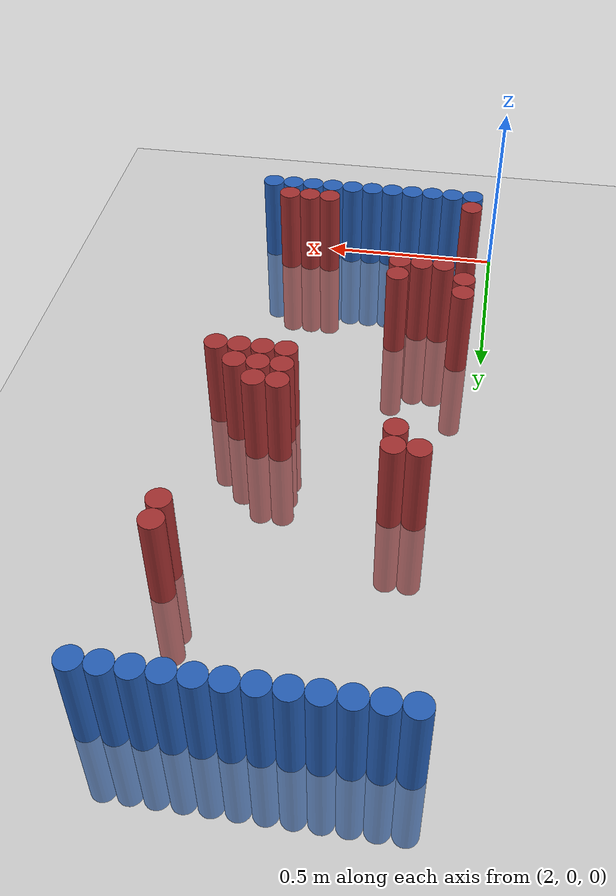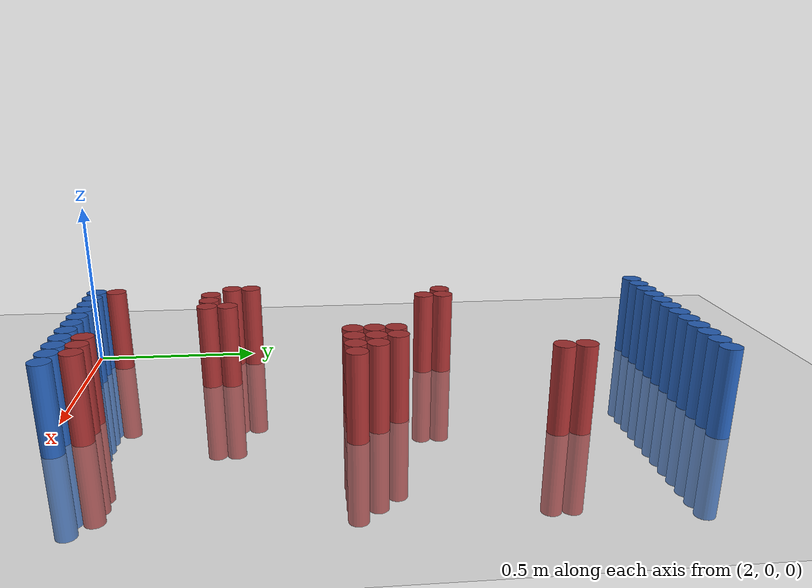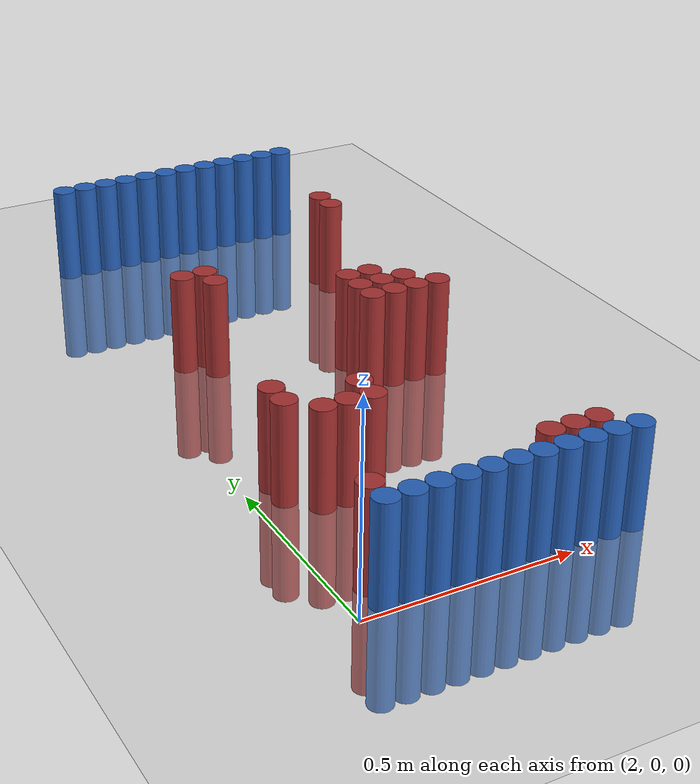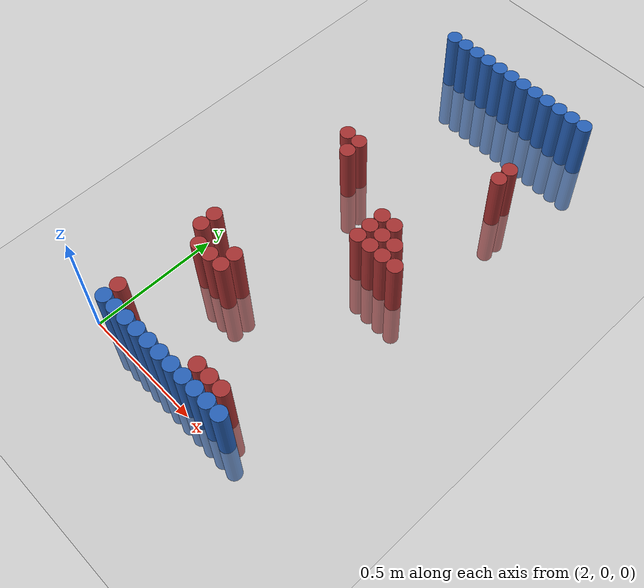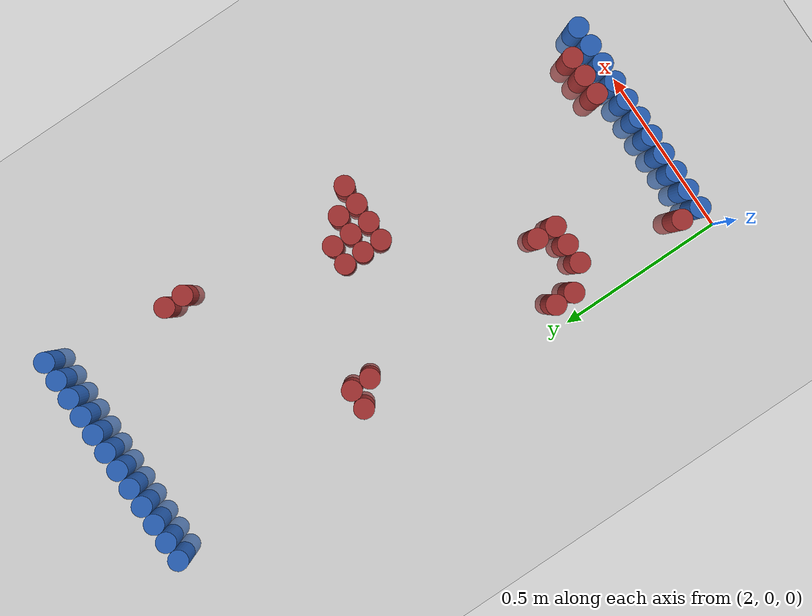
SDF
<sdf version="1.6">
 <world name="default">
  <model name="ground_plane">
   <static>1</static>
   <link name="link">
    <collision name="collision">
     <geometry><plane><normal>0 0 1</normal><size>100 100</size></plane></geometry>
     <surface><friction><ode><mu>100</mu><mu2>50</mu2></ode></friction></surface>
    </collision>
    <visual name="visual">
     <cast_shadows>0</cast_shadows>
     <geometry><plane><normal>0 0 1</normal><size>100 100</size></plane></geometry>
     <material>
      <script><uri>file://media/materials/scripts/gazebo.material</uri><name>Gazebo/Grey</name></script>
     </material>
    </visual>
   </link>
  </model>
  <model name="unit_cylinder_95">
   <static>1</static>
   <pose>2.070000 1.770000 0.000000 0.000000 0.000000 0.000000</pose>
   <link name="link">
    <inertial>
     <mass>1</mass>
     <inertia><ixx>0.145833</ixx><ixy>0</ixy><ixz>0</ixz><iyy>0.145833</iyy><iyz>0</iyz><izz>0.125</izz></inertia>
    </inertial>
    <collision name="collision">
     <geometry><cylinder><radius>0.030000</radius><length>0.5</length></cylinder></geometry>
    </collision>
    <visual name="visual">
     <geometry><cylinder><radius>0.030000</radius><length>0.5</length></cylinder></geometry>
     <material>
      <ambient>0.152000 0.379000 0.720000 1</ambient>
      <diffuse>0.152000 0.379000 0.720000 1</diffuse>
     </material>
     <material>
      <script><name>Gazebo/Grey</name><uri>file://media/materials/scripts/gazebo.material</uri></script>
     </material>
    </visual>
   </link>
  </model>
  <model name="unit_cylinder_96">
   <static>1</static>
   <pose>2.130000 1.770000 0.000000 0.000000 0.000000 0.000000</pose>
   <link name="link">
    <inertial>
     <mass>1</mass>
     <inertia><ixx>0.145833</ixx><ixy>0</ixy><ixz>0</ixz><iyy>0.145833</iyy><iyz>0</iyz><izz>0.125</izz></inertia>
    </inertial>
    <collision name="collision">
     <geometry><cylinder><radius>0.030000</radius><length>0.5</length></cylinder></geometry>
    </collision>
    <visual name="visual">
     <geometry><cylinder><radius>0.030000</radius><length>0.5</length></cylinder></geometry>
     <material>
      <ambient>0.152000 0.379000 0.720000 1</ambient>
      <diffuse>0.152000 0.379000 0.720000 1</diffuse>
     </material>
     <material>
      <script><name>Gazebo/Grey</name><uri>file://media/materials/scripts/gazebo.material</uri></script>
     </material>
    </visual>
   </link>
  </model>
  <model name="unit_cylinder_97">
   <static>1</static>
   <pose>2.190000 1.770000 0.000000 0.000000 0.000000 0.000000</pose>
   <link name="link">
    <inertial>
     <mass>1</mass>
     <inertia><ixx>0.145833</ixx><ixy>0</ixy><ixz>0</ixz><iyy>0.145833</iyy><iyz>0</iyz><izz>0.125</izz></inertia>
    </inertial>
    <collision name="collision">
     <geometry><cylinder><radius>0.030000</radius><length>0.5</length></cylinder></geometry>
    </collision>
    <visual name="visual">
     <geometry><cylinder><radius>0.030000</radius><length>0.5</length></cylinder></geometry>
     <material>
      <ambient>0.152000 0.379000 0.720000 1</ambient>
      <diffuse>0.152000 0.379000 0.720000 1</diffuse>
     </material>
     <material>
      <script><name>Gazebo/Grey</name><uri>file://media/materials/scripts/gazebo.material</uri></script>
     </material>
    </visual>
   </link>
  </model>
  <model name="unit_cylinder_98">
   <static>1</static>
   <pose>2.250000 1.770000 0.000000 0.000000 0.000000 0.000000</pose>
   <link name="link">
    <inertial>
     <mass>1</mass>
     <inertia><ixx>0.145833</ixx><ixy>0</ixy><ixz>0</ixz><iyy>0.145833</iyy><iyz>0</iyz><izz>0.125</izz></inertia>
    </inertial>
    <collision name="collision">
     <geometry><cylinder><radius>0.030000</radius><length>0.5</length></cylinder></geometry>
    </collision>
    <visual name="visual">
     <geometry><cylinder><radius>0.030000</radius><length>0.5</length></cylinder></geometry>
     <material>
      <ambient>0.152000 0.379000 0.720000 1</ambient>
      <diffuse>0.152000 0.379000 0.720000 1</diffuse>
     </material>
     <material>
      <script><name>Gazebo/Grey</name><uri>file://media/materials/scripts/gazebo.material</uri></script>
     </material>
    </visual>
   </link>
  </model>
  <model name="unit_cylinder_99">
   <static>1</static>
   <pose>2.310000 1.770000 0.000000 0.000000 0.000000 0.000000</pose>
   <link name="link">
    <inertial>
     <mass>1</mass>
     <inertia><ixx>0.145833</ixx><ixy>0</ixy><ixz>0</ixz><iyy>0.145833</iyy><iyz>0</iyz><izz>0.125</izz></inertia>
    </inertial>
    <collision name="collision">
     <geometry><cylinder><radius>0.030000</radius><length>0.5</length></cylinder></geometry>
    </collision>
    <visual name="visual">
     <geometry><cylinder><radius>0.030000</radius><length>0.5</length></cylinder></geometry>
     <material>
      <ambient>0.152000 0.379000 0.720000 1</ambient>
      <diffuse>0.152000 0.379000 0.720000 1</diffuse>
     </material>
     <material>
      <script><name>Gazebo/Grey</name><uri>file://media/materials/scripts/gazebo.material</uri></script>
     </material>
    </visual>
   </link>
  </model>
  <model name="unit_cylinder_100">
   <static>1</static>
   <pose>2.370000 1.770000 0.000000 0.000000 0.000000 0.000000</pose>
   <link name="link">
    <inertial>
     <mass>1</mass>
     <inertia><ixx>0.145833</ixx><ixy>0</ixy><ixz>0</ixz><iyy>0.145833</iyy><iyz>0</iyz><izz>0.125</izz></inertia>
    </inertial>
    <collision name="collision">
     <geometry><cylinder><radius>0.030000</radius><length>0.5</length></cylinder></geometry>
    </collision>
    <visual name="visual">
     <geometry><cylinder><radius>0.030000</radius><length>0.5</length></cylinder></geometry>
     <material>
      <ambient>0.152000 0.379000 0.720000 1</ambient>
      <diffuse>0.152000 0.379000 0.720000 1</diffuse>
     </material>
     <material>
      <script><name>Gazebo/Grey</name><uri>file://media/materials/scripts/gazebo.material</uri></script>
     </material>
    </visual>
   </link>
  </model>
  <model name="unit_cylinder_101">
   <static>1</static>
   <pose>2.430000 1.770000 0.000000 0.000000 0.000000 0.000000</pose>
   <link name="link">
    <inertial>
     <mass>1</mass>
     <inertia><ixx>0.145833</ixx><ixy>0</ixy><ixz>0</ixz><iyy>0.145833</iyy><iyz>0</iyz><izz>0.125</izz></inertia>
    </inertial>
    <collision name="collision">
     <geometry><cylinder><radius>0.030000</radius><length>0.5</length></cylinder></geometry>
    </collision>
    <visual name="visual">
     <geometry><cylinder><radius>0.030000</radius><length>0.5</length></cylinder></geometry>
     <material>
      <ambient>0.152000 0.379000 0.720000 1</ambient>
      <diffuse>0.152000 0.379000 0.720000 1</diffuse>
     </material>
     <material>
      <script><name>Gazebo/Grey</name><uri>file://media/materials/scripts/gazebo.material</uri></script>
     </material>
    </visual>
   </link>
  </model>
  <model name="unit_cylinder_102">
   <static>1</static>
   <pose>2.490000 1.770000 0.000000 0.000000 0.000000 0.000000</pose>
   <link name="link">
    <inertial>
     <mass>1</mass>
     <inertia><ixx>0.145833</ixx><ixy>0</ixy><ixz>0</ixz><iyy>0.145833</iyy><iyz>0</iyz><izz>0.125</izz></inertia>
    </inertial>
    <collision name="collision">
     <geometry><cylinder><radius>0.030000</radius><length>0.5</length></cylinder></geometry>
    </collision>
    <visual name="visual">
     <geometry><cylinder><radius>0.030000</radius><length>0.5</length></cylinder></geometry>
     <material>
      <ambient>0.152000 0.379000 0.720000 1</ambient>
      <diffuse>0.152000 0.379000 0.720000 1</diffuse>
     </material>
     <material>
      <script><name>Gazebo/Grey</name><uri>file://media/materials/scripts/gazebo.material</uri></script>
     </material>
    </visual>
   </link>
  </model>
  <model name="unit_cylinder_103">
   <static>1</static>
   <pose>2.550000 1.770000 0.000000 0.000000 0.000000 0.000000</pose>
   <link name="link">
    <inertial>
     <mass>1</mass>
     <inertia><ixx>0.145833</ixx><ixy>0</ixy><ixz>0</ixz><iyy>0.145833</iyy><iyz>0</iyz><izz>0.125</izz></inertia>
    </inertial>
    <collision name="collision">
     <geometry><cylinder><radius>0.030000</radius><length>0.5</length></cylinder></geometry>
    </collision>
    <visual name="visual">
     <geometry><cylinder><radius>0.030000</radius><length>0.5</length></cylinder></geometry>
     <material>
      <ambient>0.152000 0.379000 0.720000 1</ambient>
      <diffuse>0.152000 0.379000 0.720000 1</diffuse>
     </material>
     <material>
      <script><name>Gazebo/Grey</name><uri>file://media/materials/scripts/gazebo.material</uri></script>
     </material>
    </visual>
   </link>
  </model>
  <model name="unit_cylinder_104">
   <static>1</static>
   <pose>2.610000 1.770000 0.000000 0.000000 0.000000 0.000000</pose>
   <link name="link">
    <inertial>
     <mass>1</mass>
     <inertia><ixx>0.145833</ixx><ixy>0</ixy><ixz>0</ixz><iyy>0.145833</iyy><iyz>0</iyz><izz>0.125</izz></inertia>
    </inertial>
    <collision name="collision">
     <geometry><cylinder><radius>0.030000</radius><length>0.5</length></cylinder></geometry>
    </collision>
    <visual name="visual">
     <geometry><cylinder><radius>0.030000</radius><length>0.5</length></cylinder></geometry>
     <material>
      <ambient>0.152000 0.379000 0.720000 1</ambient>
      <diffuse>0.152000 0.379000 0.720000 1</diffuse>
     </material>
     <material>
      <script><name>Gazebo/Grey</name><uri>file://media/materials/scripts/gazebo.material</uri></script>
     </material>
    </visual>
   </link>
  </model>
  <model name="unit_cylinder_105">
   <static>1</static>
   <pose>2.670000 1.770000 0.000000 0.000000 0.000000 0.000000</pose>
   <link name="link">
    <inertial>
     <mass>1</mass>
     <inertia><ixx>0.145833</ixx><ixy>0</ixy><ixz>0</ixz><iyy>0.145833</iyy><iyz>0</iyz><izz>0.125</izz></inertia>
    </inertial>
    <collision name="collision">
     <geometry><cylinder><radius>0.030000</radius><length>0.5</length></cylinder></geometry>
    </collision>
    <visual name="visual">
     <geometry><cylinder><radius>0.030000</radius><length>0.5</length></cylinder></geometry>
     <material>
      <ambient>0.152000 0.379000 0.720000 1</ambient>
      <diffuse>0.152000 0.379000 0.720000 1</diffuse>
     </material>
     <material>
      <script><name>Gazebo/Grey</name><uri>file://media/materials/scripts/gazebo.material</uri></script>
     </material>
    </visual>
   </link>
  </model>
  <model name="unit_cylinder_106">
   <static>1</static>
   <pose>2.730000 1.770000 0.000000 0.000000 0.000000 0.000000</pose>
   <link name="link">
    <inertial>
     <mass>1</mass>
     <inertia><ixx>0.145833</ixx><ixy>0</ixy><ixz>0</ixz><iyy>0.145833</iyy><iyz>0</iyz><izz>0.125</izz></inertia>
    </inertial>
    <collision name="collision">
     <geometry><cylinder><radius>0.030000</radius><length>0.5</length></cylinder></geometry>
    </collision>
    <visual name="visual">
     <geometry><cylinder><radius>0.030000</radius><length>0.5</length></cylinder></geometry>
     <material>
      <ambient>0.152000 0.379000 0.720000 1</ambient>
      <diffuse>0.152000 0.379000 0.720000 1</diffuse>
     </material>
     <material>
      <script><name>Gazebo/Grey</name><uri>file://media/materials/scripts/gazebo.material</uri></script>
     </material>
    </visual>
   </link>
  </model>
  <model name="unit_cylinder_145">
   <static>1</static>
   <pose>2.670000 1.410000 0.000000 0.000000 0.000000 0.000000</pose>
   <link name="link">
    <inertial>
     <mass>1</mass>
     <inertia><ixx>0.145833</ixx><ixy>0</ixy><ixz>0</ixz><iyy>0.145833</iyy><iyz>0</iyz><izz>0.125</izz></inertia>
    </inertial>
    <collision name="collision">
     <geometry><cylinder><radius>0.030000</radius><length>0.5</length></cylinder></geometry>
    </collision>
    <visual name="visual">
     <geometry><cylinder><radius>0.030000</radius><length>0.5</length></cylinder></geometry>
     <material>
      <ambient>0.648000 0.192000 0.192000 1</ambient>
      <diffuse>0.648000 0.192000 0.192000 1</diffuse>
     </material>
     <material>
      <script><name>Gazebo/Grey</name><uri>file://media/materials/scripts/gazebo.material</uri></script>
     </material>
    </visual>
   </link>
  </model>
  <model name="unit_cylinder_149">
   <static>1</static>
   <pose>2.670000 1.350000 0.000000 0.000000 0.000000 0.000000</pose>
   <link name="link">
    <inertial>
     <mass>1</mass>
     <inertia><ixx>0.145833</ixx><ixy>0</ixy><ixz>0</ixz><iyy>0.145833</iyy><iyz>0</iyz><izz>0.125</izz></inertia>
    </inertial>
    <collision name="collision">
     <geometry><cylinder><radius>0.030000</radius><length>0.5</length></cylinder></geometry>
    </collision>
    <visual name="visual">
     <geometry><cylinder><radius>0.030000</radius><length>0.5</length></cylinder></geometry>
     <material>
      <ambient>0.648000 0.192000 0.192000 1</ambient>
      <diffuse>0.648000 0.192000 0.192000 1</diffuse>
     </material>
     <material>
      <script><name>Gazebo/Grey</name><uri>file://media/materials/scripts/gazebo.material</uri></script>
     </material>
    </visual>
   </link>
  </model>
  <model name="unit_cylinder_154">
   <static>1</static>
   <pose>2.130000 1.110000 0.000000 0.000000 0.000000 0.000000</pose>
   <link name="link">
    <inertial>
     <mass>1</mass>
     <inertia><ixx>0.145833</ixx><ixy>0</ixy><ixz>0</ixz><iyy>0.145833</iyy><iyz>0</iyz><izz>0.125</izz></inertia>
    </inertial>
    <collision name="collision">
     <geometry><cylinder><radius>0.030000</radius><length>0.5</length></cylinder></geometry>
    </collision>
    <visual name="visual">
     <geometry><cylinder><radius>0.030000</radius><length>0.5</length></cylinder></geometry>
     <material>
      <ambient>0.648000 0.192000 0.192000 1</ambient>
      <diffuse>0.648000 0.192000 0.192000 1</diffuse>
     </material>
     <material>
      <script><name>Gazebo/Grey</name><uri>file://media/materials/scripts/gazebo.material</uri></script>
     </material>
    </visual>
   </link>
  </model>
  <model name="unit_cylinder_155">
   <static>1</static>
   <pose>2.190000 1.110000 0.000000 0.000000 0.000000 0.000000</pose>
   <link name="link">
    <inertial>
     <mass>1</mass>
     <inertia><ixx>0.145833</ixx><ixy>0</ixy><ixz>0</ixz><iyy>0.145833</iyy><iyz>0</iyz><izz>0.125</izz></inertia>
    </inertial>
    <collision name="collision">
     <geometry><cylinder><radius>0.030000</radius><length>0.5</length></cylinder></geometry>
    </collision>
    <visual name="visual">
     <geometry><cylinder><radius>0.030000</radius><length>0.5</length></cylinder></geometry>
     <material>
      <ambient>0.648000 0.192000 0.192000 1</ambient>
      <diffuse>0.648000 0.192000 0.192000 1</diffuse>
     </material>
     <material>
      <script><name>Gazebo/Grey</name><uri>file://media/materials/scripts/gazebo.material</uri></script>
     </material>
    </visual>
   </link>
  </model>
  <model name="unit_cylinder_157">
   <static>1</static>
   <pose>2.190000 1.050000 0.000000 0.000000 0.000000 0.000000</pose>
   <link name="link">
    <inertial>
     <mass>1</mass>
     <inertia><ixx>0.145833</ixx><ixy>0</ixy><ixz>0</ixz><iyy>0.145833</iyy><iyz>0</iyz><izz>0.125</izz></inertia>
    </inertial>
    <collision name="collision">
     <geometry><cylinder><radius>0.030000</radius><length>0.5</length></cylinder></geometry>
    </collision>
    <visual name="visual">
     <geometry><cylinder><radius>0.030000</radius><length>0.5</length></cylinder></geometry>
     <material>
      <ambient>0.648000 0.192000 0.192000 1</ambient>
      <diffuse>0.648000 0.192000 0.192000 1</diffuse>
     </material>
     <material>
      <script><name>Gazebo/Grey</name><uri>file://media/materials/scripts/gazebo.material</uri></script>
     </material>
    </visual>
   </link>
  </model>
  <model name="unit_cylinder_158">
   <static>1</static>
   <pose>2.490000 0.930000 0.000000 0.000000 0.000000 0.000000</pose>
   <link name="link">
    <inertial>
     <mass>1</mass>
     <inertia><ixx>0.145833</ixx><ixy>0</ixy><ixz>0</ixz><iyy>0.145833</iyy><iyz>0</iyz><izz>0.125</izz></inertia>
    </inertial>
    <collision name="collision">
     <geometry><cylinder><radius>0.030000</radius><length>0.5</length></cylinder></geometry>
    </collision>
    <visual name="visual">
     <geometry><cylinder><radius>0.030000</radius><length>0.5</length></cylinder></geometry>
     <material>
      <ambient>0.648000 0.192000 0.192000 1</ambient>
      <diffuse>0.648000 0.192000 0.192000 1</diffuse>
     </material>
     <material>
      <script><name>Gazebo/Grey</name><uri>file://media/materials/scripts/gazebo.material</uri></script>
     </material>
    </visual>
   </link>
  </model>
  <model name="unit_cylinder_159">
   <static>1</static>
   <pose>2.550000 0.930000 0.000000 0.000000 0.000000 0.000000</pose>
   <link name="link">
    <inertial>
     <mass>1</mass>
     <inertia><ixx>0.145833</ixx><ixy>0</ixy><ixz>0</ixz><iyy>0.145833</iyy><iyz>0</iyz><izz>0.125</izz></inertia>
    </inertial>
    <collision name="collision">
     <geometry><cylinder><radius>0.030000</radius><length>0.5</length></cylinder></geometry>
    </collision>
    <visual name="visual">
     <geometry><cylinder><radius>0.030000</radius><length>0.5</length></cylinder></geometry>
     <material>
      <ambient>0.648000 0.192000 0.192000 1</ambient>
      <diffuse>0.648000 0.192000 0.192000 1</diffuse>
     </material>
     <material>
      <script><name>Gazebo/Grey</name><uri>file://media/materials/scripts/gazebo.material</uri></script>
     </material>
    </visual>
   </link>
  </model>
  <model name="unit_cylinder_160">
   <static>1</static>
   <pose>2.490000 0.870000 0.000000 0.000000 0.000000 0.000000</pose>
   <link name="link">
    <inertial>
     <mass>1</mass>
     <inertia><ixx>0.145833</ixx><ixy>0</ixy><ixz>0</ixz><iyy>0.145833</iyy><iyz>0</iyz><izz>0.125</izz></inertia>
    </inertial>
    <collision name="collision">
     <geometry><cylinder><radius>0.030000</radius><length>0.5</length></cylinder></geometry>
    </collision>
    <visual name="visual">
     <geometry><cylinder><radius>0.030000</radius><length>0.5</length></cylinder></geometry>
     <material>
      <ambient>0.648000 0.192000 0.192000 1</ambient>
      <diffuse>0.648000 0.192000 0.192000 1</diffuse>
     </material>
     <material>
      <script><name>Gazebo/Grey</name><uri>file://media/materials/scripts/gazebo.material</uri></script>
     </material>
    </visual>
   </link>
  </model>
  <model name="unit_cylinder_161">
   <static>1</static>
   <pose>2.550000 0.870000 0.000000 0.000000 0.000000 0.000000</pose>
   <link name="link">
    <inertial>
     <mass>1</mass>
     <inertia><ixx>0.145833</ixx><ixy>0</ixy><ixz>0</ixz><iyy>0.145833</iyy><iyz>0</iyz><izz>0.125</izz></inertia>
    </inertial>
    <collision name="collision">
     <geometry><cylinder><radius>0.030000</radius><length>0.5</length></cylinder></geometry>
    </collision>
    <visual name="visual">
     <geometry><cylinder><radius>0.030000</radius><length>0.5</length></cylinder></geometry>
     <material>
      <ambient>0.648000 0.192000 0.192000 1</ambient>
      <diffuse>0.648000 0.192000 0.192000 1</diffuse>
     </material>
     <material>
      <script><name>Gazebo/Grey</name><uri>file://media/materials/scripts/gazebo.material</uri></script>
     </material>
    </visual>
   </link>
  </model>
  <model name="unit_cylinder_162">
   <static>1</static>
   <pose>2.610000 0.870000 0.000000 0.000000 0.000000 0.000000</pose>
   <link name="link">
    <inertial>
     <mass>1</mass>
     <inertia><ixx>0.145833</ixx><ixy>0</ixy><ixz>0</ixz><iyy>0.145833</iyy><iyz>0</iyz><izz>0.125</izz></inertia>
    </inertial>
    <collision name="collision">
     <geometry><cylinder><radius>0.030000</radius><length>0.5</length></cylinder></geometry>
    </collision>
    <visual name="visual">
     <geometry><cylinder><radius>0.030000</radius><length>0.5</length></cylinder></geometry>
     <material>
      <ambient>0.648000 0.192000 0.192000 1</ambient>
      <diffuse>0.648000 0.192000 0.192000 1</diffuse>
     </material>
     <material>
      <script><name>Gazebo/Grey</name><uri>file://media/materials/scripts/gazebo.material</uri></script>
     </material>
    </visual>
   </link>
  </model>
  <model name="unit_cylinder_163">
   <static>1</static>
   <pose>2.490000 0.810000 0.000000 0.000000 0.000000 0.000000</pose>
   <link name="link">
    <inertial>
     <mass>1</mass>
     <inertia><ixx>0.145833</ixx><ixy>0</ixy><ixz>0</ixz><iyy>0.145833</iyy><iyz>0</iyz><izz>0.125</izz></inertia>
    </inertial>
    <collision name="collision">
     <geometry><cylinder><radius>0.030000</radius><length>0.5</length></cylinder></geometry>
    </collision>
    <visual name="visual">
     <geometry><cylinder><radius>0.030000</radius><length>0.5</length></cylinder></geometry>
     <material>
      <ambient>0.648000 0.192000 0.192000 1</ambient>
      <diffuse>0.648000 0.192000 0.192000 1</diffuse>
     </material>
     <material>
      <script><name>Gazebo/Grey</name><uri>file://media/materials/scripts/gazebo.material</uri></script>
     </material>
    </visual>
   </link>
  </model>
  <model name="unit_cylinder_164">
   <static>1</static>
   <pose>2.550000 0.810000 0.000000 0.000000 0.000000 0.000000</pose>
   <link name="link">
    <inertial>
     <mass>1</mass>
     <inertia><ixx>0.145833</ixx><ixy>0</ixy><ixz>0</ixz><iyy>0.145833</iyy><iyz>0</iyz><izz>0.125</izz></inertia>
    </inertial>
    <collision name="collision">
     <geometry><cylinder><radius>0.030000</radius><length>0.5</length></cylinder></geometry>
    </collision>
    <visual name="visual">
     <geometry><cylinder><radius>0.030000</radius><length>0.5</length></cylinder></geometry>
     <material>
      <ambient>0.648000 0.192000 0.192000 1</ambient>
      <diffuse>0.648000 0.192000 0.192000 1</diffuse>
     </material>
     <material>
      <script><name>Gazebo/Grey</name><uri>file://media/materials/scripts/gazebo.material</uri></script>
     </material>
    </visual>
   </link>
  </model>
  <model name="unit_cylinder_165">
   <static>1</static>
   <pose>2.610000 0.810000 0.000000 0.000000 0.000000 0.000000</pose>
   <link name="link">
    <inertial>
     <mass>1</mass>
     <inertia><ixx>0.145833</ixx><ixy>0</ixy><ixz>0</ixz><iyy>0.145833</iyy><iyz>0</iyz><izz>0.125</izz></inertia>
    </inertial>
    <collision name="collision">
     <geometry><cylinder><radius>0.030000</radius><length>0.5</length></cylinder></geometry>
    </collision>
    <visual name="visual">
     <geometry><cylinder><radius>0.030000</radius><length>0.5</length></cylinder></geometry>
     <material>
      <ambient>0.648000 0.192000 0.192000 1</ambient>
      <diffuse>0.648000 0.192000 0.192000 1</diffuse>
     </material>
     <material>
      <script><name>Gazebo/Grey</name><uri>file://media/materials/scripts/gazebo.material</uri></script>
     </material>
    </visual>
   </link>
  </model>
  <model name="unit_cylinder_166">
   <static>1</static>
   <pose>2.670000 0.810000 0.000000 0.000000 0.000000 0.000000</pose>
   <link name="link">
    <inertial>
     <mass>1</mass>
     <inertia><ixx>0.145833</ixx><ixy>0</ixy><ixz>0</ixz><iyy>0.145833</iyy><iyz>0</iyz><izz>0.125</izz></inertia>
    </inertial>
    <collision name="collision">
     <geometry><cylinder><radius>0.030000</radius><length>0.5</length></cylinder></geometry>
    </collision>
    <visual name="visual">
     <geometry><cylinder><radius>0.030000</radius><length>0.5</length></cylinder></geometry>
     <material>
      <ambient>0.648000 0.192000 0.192000 1</ambient>
      <diffuse>0.648000 0.192000 0.192000 1</diffuse>
     </material>
     <material>
      <script><name>Gazebo/Grey</name><uri>file://media/materials/scripts/gazebo.material</uri></script>
     </material>
    </visual>
   </link>
  </model>
  <model name="unit_cylinder_171">
   <static>1</static>
   <pose>2.070000 0.510000 0.000000 0.000000 0.000000 0.000000</pose>
   <link name="link">
    <inertial>
     <mass>1</mass>
     <inertia><ixx>0.145833</ixx><ixy>0</ixy><ixz>0</ixz><iyy>0.145833</iyy><iyz>0</iyz><izz>0.125</izz></inertia>
    </inertial>
    <collision name="collision">
     <geometry><cylinder><radius>0.030000</radius><length>0.5</length></cylinder></geometry>
    </collision>
    <visual name="visual">
     <geometry><cylinder><radius>0.030000</radius><length>0.5</length></cylinder></geometry>
     <material>
      <ambient>0.648000 0.192000 0.192000 1</ambient>
      <diffuse>0.648000 0.192000 0.192000 1</diffuse>
     </material>
     <material>
      <script><name>Gazebo/Grey</name><uri>file://media/materials/scripts/gazebo.material</uri></script>
     </material>
    </visual>
   </link>
  </model>
  <model name="unit_cylinder_177">
   <static>1</static>
   <pose>2.070000 0.450000 0.000000 0.000000 0.000000 0.000000</pose>
   <link name="link">
    <inertial>
     <mass>1</mass>
     <inertia><ixx>0.145833</ixx><ixy>0</ixy><ixz>0</ixz><iyy>0.145833</iyy><iyz>0</iyz><izz>0.125</izz></inertia>
    </inertial>
    <collision name="collision">
     <geometry><cylinder><radius>0.030000</radius><length>0.5</length></cylinder></geometry>
    </collision>
    <visual name="visual">
     <geometry><cylinder><radius>0.030000</radius><length>0.5</length></cylinder></geometry>
     <material>
      <ambient>0.648000 0.192000 0.192000 1</ambient>
      <diffuse>0.648000 0.192000 0.192000 1</diffuse>
     </material>
     <material>
      <script><name>Gazebo/Grey</name><uri>file://media/materials/scripts/gazebo.material</uri></script>
     </material>
    </visual>
   </link>
  </model>
  <model name="unit_cylinder_178">
   <static>1</static>
   <pose>2.250000 0.450000 0.000000 0.000000 0.000000 0.000000</pose>
   <link name="link">
    <inertial>
     <mass>1</mass>
     <inertia><ixx>0.145833</ixx><ixy>0</ixy><ixz>0</ixz><iyy>0.145833</iyy><iyz>0</iyz><izz>0.125</izz></inertia>
    </inertial>
    <collision name="collision">
     <geometry><cylinder><radius>0.030000</radius><length>0.5</length></cylinder></geometry>
    </collision>
    <visual name="visual">
     <geometry><cylinder><radius>0.030000</radius><length>0.5</length></cylinder></geometry>
     <material>
      <ambient>0.648000 0.192000 0.192000 1</ambient>
      <diffuse>0.648000 0.192000 0.192000 1</diffuse>
     </material>
     <material>
      <script><name>Gazebo/Grey</name><uri>file://media/materials/scripts/gazebo.material</uri></script>
     </material>
    </visual>
   </link>
  </model>
  <model name="unit_cylinder_182">
   <static>1</static>
   <pose>2.130000 0.390000 0.000000 0.000000 0.000000 0.000000</pose>
   <link name="link">
    <inertial>
     <mass>1</mass>
     <inertia><ixx>0.145833</ixx><ixy>0</ixy><ixz>0</ixz><iyy>0.145833</iyy><iyz>0</iyz><izz>0.125</izz></inertia>
    </inertial>
    <collision name="collision">
     <geometry><cylinder><radius>0.030000</radius><length>0.5</length></cylinder></geometry>
    </collision>
    <visual name="visual">
     <geometry><cylinder><radius>0.030000</radius><length>0.5</length></cylinder></geometry>
     <material>
      <ambient>0.648000 0.192000 0.192000 1</ambient>
      <diffuse>0.648000 0.192000 0.192000 1</diffuse>
     </material>
     <material>
      <script><name>Gazebo/Grey</name><uri>file://media/materials/scripts/gazebo.material</uri></script>
     </material>
    </visual>
   </link>
  </model>
  <model name="unit_cylinder_183">
   <static>1</static>
   <pose>2.190000 0.390000 0.000000 0.000000 0.000000 0.000000</pose>
   <link name="link">
    <inertial>
     <mass>1</mass>
     <inertia><ixx>0.145833</ixx><ixy>0</ixy><ixz>0</ixz><iyy>0.145833</iyy><iyz>0</iyz><izz>0.125</izz></inertia>
    </inertial>
    <collision name="collision">
     <geometry><cylinder><radius>0.030000</radius><length>0.5</length></cylinder></geometry>
    </collision>
    <visual name="visual">
     <geometry><cylinder><radius>0.030000</radius><length>0.5</length></cylinder></geometry>
     <material>
      <ambient>0.648000 0.192000 0.192000 1</ambient>
      <diffuse>0.648000 0.192000 0.192000 1</diffuse>
     </material>
     <material>
      <script><name>Gazebo/Grey</name><uri>file://media/materials/scripts/gazebo.material</uri></script>
     </material>
    </visual>
   </link>
  </model>
  <model name="unit_cylinder_184">
   <static>1</static>
   <pose>2.250000 0.390000 0.000000 0.000000 0.000000 0.000000</pose>
   <link name="link">
    <inertial>
     <mass>1</mass>
     <inertia><ixx>0.145833</ixx><ixy>0</ixy><ixz>0</ixz><iyy>0.145833</iyy><iyz>0</iyz><izz>0.125</izz></inertia>
    </inertial>
    <collision name="collision">
     <geometry><cylinder><radius>0.030000</radius><length>0.5</length></cylinder></geometry>
    </collision>
    <visual name="visual">
     <geometry><cylinder><radius>0.030000</radius><length>0.5</length></cylinder></geometry>
     <material>
      <ambient>0.648000 0.192000 0.192000 1</ambient>
      <diffuse>0.648000 0.192000 0.192000 1</diffuse>
     </material>
     <material>
      <script><name>Gazebo/Grey</name><uri>file://media/materials/scripts/gazebo.material</uri></script>
     </material>
    </visual>
   </link>
  </model>
  <model name="unit_cylinder_192">
   <static>1</static>
   <pose>2.070000 0.090000 0.000000 0.000000 0.000000 0.000000</pose>
   <link name="link">
    <inertial>
     <mass>1</mass>
     <inertia><ixx>0.145833</ixx><ixy>0</ixy><ixz>0</ixz><iyy>0.145833</iyy><iyz>0</iyz><izz>0.125</izz></inertia>
    </inertial>
    <collision name="collision">
     <geometry><cylinder><radius>0.030000</radius><length>0.5</length></cylinder></geometry>
    </collision>
    <visual name="visual">
     <geometry><cylinder><radius>0.030000</radius><length>0.5</length></cylinder></geometry>
     <material>
      <ambient>0.648000 0.192000 0.192000 1</ambient>
      <diffuse>0.648000 0.192000 0.192000 1</diffuse>
     </material>
     <material>
      <script><name>Gazebo/Grey</name><uri>file://media/materials/scripts/gazebo.material</uri></script>
     </material>
    </visual>
   </link>
  </model>
  <model name="unit_cylinder_193">
   <static>1</static>
   <pose>2.490000 0.090000 0.000000 0.000000 0.000000 0.000000</pose>
   <link name="link">
    <inertial>
     <mass>1</mass>
     <inertia><ixx>0.145833</ixx><ixy>0</ixy><ixz>0</ixz><iyy>0.145833</iyy><iyz>0</iyz><izz>0.125</izz></inertia>
    </inertial>
    <collision name="collision">
     <geometry><cylinder><radius>0.030000</radius><length>0.5</length></cylinder></geometry>
    </collision>
    <visual name="visual">
     <geometry><cylinder><radius>0.030000</radius><length>0.5</length></cylinder></geometry>
     <material>
      <ambient>0.648000 0.192000 0.192000 1</ambient>
      <diffuse>0.648000 0.192000 0.192000 1</diffuse>
     </material>
     <material>
      <script><name>Gazebo/Grey</name><uri>file://media/materials/scripts/gazebo.material</uri></script>
     </material>
    </visual>
   </link>
  </model>
  <model name="unit_cylinder_194">
   <static>1</static>
   <pose>2.550000 0.090000 0.000000 0.000000 0.000000 0.000000</pose>
   <link name="link">
    <inertial>
     <mass>1</mass>
     <inertia><ixx>0.145833</ixx><ixy>0</ixy><ixz>0</ixz><iyy>0.145833</iyy><iyz>0</iyz><izz>0.125</izz></inertia>
    </inertial>
    <collision name="collision">
     <geometry><cylinder><radius>0.030000</radius><length>0.5</length></cylinder></geometry>
    </collision>
    <visual name="visual">
     <geometry><cylinder><radius>0.030000</radius><length>0.5</length></cylinder></geometry>
     <material>
      <ambient>0.648000 0.192000 0.192000 1</ambient>
      <diffuse>0.648000 0.192000 0.192000 1</diffuse>
     </material>
     <material>
      <script><name>Gazebo/Grey</name><uri>file://media/materials/scripts/gazebo.material</uri></script>
     </material>
    </visual>
   </link>
  </model>
  <model name="unit_cylinder_195">
   <static>1</static>
   <pose>2.610000 0.090000 0.000000 0.000000 0.000000 0.000000</pose>
   <link name="link">
    <inertial>
     <mass>1</mass>
     <inertia><ixx>0.145833</ixx><ixy>0</ixy><ixz>0</ixz><iyy>0.145833</iyy><iyz>0</iyz><izz>0.125</izz></inertia>
    </inertial>
    <collision name="collision">
     <geometry><cylinder><radius>0.030000</radius><length>0.5</length></cylinder></geometry>
    </collision>
    <visual name="visual">
     <geometry><cylinder><radius>0.030000</radius><length>0.5</length></cylinder></geometry>
     <material>
      <ambient>0.648000 0.192000 0.192000 1</ambient>
      <diffuse>0.648000 0.192000 0.192000 1</diffuse>
     </material>
     <material>
      <script><name>Gazebo/Grey</name><uri>file://media/materials/scripts/gazebo.material</uri></script>
     </material>
    </visual>
   </link>
  </model>
  <model name="unit_cylinder_207">
   <static>1</static>
   <pose>2.070000 0.030000 0.000000 0.000000 0.000000 0.000000</pose>
   <link name="link">
    <inertial>
     <mass>1</mass>
     <inertia><ixx>0.145833</ixx><ixy>0</ixy><ixz>0</ixz><iyy>0.145833</iyy><iyz>0</iyz><izz>0.125</izz></inertia>
    </inertial>
    <collision name="collision">
     <geometry><cylinder><radius>0.030000</radius><length>0.5</length></cylinder></geometry>
    </collision>
    <visual name="visual">
     <geometry><cylinder><radius>0.030000</radius><length>0.5</length></cylinder></geometry>
     <material>
      <ambient>0.152000 0.379000 0.720000 1</ambient>
      <diffuse>0.152000 0.379000 0.720000 1</diffuse>
     </material>
     <material>
      <script><name>Gazebo/Grey</name><uri>file://media/materials/scripts/gazebo.material</uri></script>
     </material>
    </visual>
   </link>
  </model>
  <model name="unit_cylinder_208">
   <static>1</static>
   <pose>2.130000 0.030000 0.000000 0.000000 0.000000 0.000000</pose>
   <link name="link">
    <inertial>
     <mass>1</mass>
     <inertia><ixx>0.145833</ixx><ixy>0</ixy><ixz>0</ixz><iyy>0.145833</iyy><iyz>0</iyz><izz>0.125</izz></inertia>
    </inertial>
    <collision name="collision">
     <geometry><cylinder><radius>0.030000</radius><length>0.5</length></cylinder></geometry>
    </collision>
    <visual name="visual">
     <geometry><cylinder><radius>0.030000</radius><length>0.5</length></cylinder></geometry>
     <material>
      <ambient>0.152000 0.379000 0.720000 1</ambient>
      <diffuse>0.152000 0.379000 0.720000 1</diffuse>
     </material>
     <material>
      <script><name>Gazebo/Grey</name><uri>file://media/materials/scripts/gazebo.material</uri></script>
     </material>
    </visual>
   </link>
  </model>
  <model name="unit_cylinder_209">
   <static>1</static>
   <pose>2.190000 0.030000 0.000000 0.000000 0.000000 0.000000</pose>
   <link name="link">
    <inertial>
     <mass>1</mass>
     <inertia><ixx>0.145833</ixx><ixy>0</ixy><ixz>0</ixz><iyy>0.145833</iyy><iyz>0</iyz><izz>0.125</izz></inertia>
    </inertial>
    <collision name="collision">
     <geometry><cylinder><radius>0.030000</radius><length>0.5</length></cylinder></geometry>
    </collision>
    <visual name="visual">
     <geometry><cylinder><radius>0.030000</radius><length>0.5</length></cylinder></geometry>
     <material>
      <ambient>0.152000 0.379000 0.720000 1</ambient>
      <diffuse>0.152000 0.379000 0.720000 1</diffuse>
     </material>
     <material>
      <script><name>Gazebo/Grey</name><uri>file://media/materials/scripts/gazebo.material</uri></script>
     </material>
    </visual>
   </link>
  </model>
  <model name="unit_cylinder_210">
   <static>1</static>
   <pose>2.250000 0.030000 0.000000 0.000000 0.000000 0.000000</pose>
   <link name="link">
    <inertial>
     <mass>1</mass>
     <inertia><ixx>0.145833</ixx><ixy>0</ixy><ixz>0</ixz><iyy>0.145833</iyy><iyz>0</iyz><izz>0.125</izz></inertia>
    </inertial>
    <collision name="collision">
     <geometry><cylinder><radius>0.030000</radius><length>0.5</length></cylinder></geometry>
    </collision>
    <visual name="visual">
     <geometry><cylinder><radius>0.030000</radius><length>0.5</length></cylinder></geometry>
     <material>
      <ambient>0.152000 0.379000 0.720000 1</ambient>
      <diffuse>0.152000 0.379000 0.720000 1</diffuse>
     </material>
     <material>
      <script><name>Gazebo/Grey</name><uri>file://media/materials/scripts/gazebo.material</uri></script>
     </material>
    </visual>
   </link>
  </model>
  <model name="unit_cylinder_211">
   <static>1</static>
   <pose>2.310000 0.030000 0.000000 0.000000 0.000000 0.000000</pose>
   <link name="link">
    <inertial>
     <mass>1</mass>
     <inertia><ixx>0.145833</ixx><ixy>0</ixy><ixz>0</ixz><iyy>0.145833</iyy><iyz>0</iyz><izz>0.125</izz></inertia>
    </inertial>
    <collision name="collision">
     <geometry><cylinder><radius>0.030000</radius><length>0.5</length></cylinder></geometry>
    </collision>
    <visual name="visual">
     <geometry><cylinder><radius>0.030000</radius><length>0.5</length></cylinder></geometry>
     <material>
      <ambient>0.152000 0.379000 0.720000 1</ambient>
      <diffuse>0.152000 0.379000 0.720000 1</diffuse>
     </material>
     <material>
      <script><name>Gazebo/Grey</name><uri>file://media/materials/scripts/gazebo.material</uri></script>
     </material>
    </visual>
   </link>
  </model>
  <model name="unit_cylinder_212">
   <static>1</static>
   <pose>2.370000 0.030000 0.000000 0.000000 0.000000 0.000000</pose>
   <link name="link">
    <inertial>
     <mass>1</mass>
     <inertia><ixx>0.145833</ixx><ixy>0</ixy><ixz>0</ixz><iyy>0.145833</iyy><iyz>0</iyz><izz>0.125</izz></inertia>
    </inertial>
    <collision name="collision">
     <geometry><cylinder><radius>0.030000</radius><length>0.5</length></cylinder></geometry>
    </collision>
    <visual name="visual">
     <geometry><cylinder><radius>0.030000</radius><length>0.5</length></cylinder></geometry>
     <material>
      <ambient>0.152000 0.379000 0.720000 1</ambient>
      <diffuse>0.152000 0.379000 0.720000 1</diffuse>
     </material>
     <material>
      <script><name>Gazebo/Grey</name><uri>file://media/materials/scripts/gazebo.material</uri></script>
     </material>
    </visual>
   </link>
  </model>
  <model name="unit_cylinder_213">
   <static>1</static>
   <pose>2.430000 0.030000 0.000000 0.000000 0.000000 0.000000</pose>
   <link name="link">
    <inertial>
     <mass>1</mass>
     <inertia><ixx>0.145833</ixx><ixy>0</ixy><ixz>0</ixz><iyy>0.145833</iyy><iyz>0</iyz><izz>0.125</izz></inertia>
    </inertial>
    <collision name="collision">
     <geometry><cylinder><radius>0.030000</radius><length>0.5</length></cylinder></geometry>
    </collision>
    <visual name="visual">
     <geometry><cylinder><radius>0.030000</radius><length>0.5</length></cylinder></geometry>
     <material>
      <ambient>0.152000 0.379000 0.720000 1</ambient>
      <diffuse>0.152000 0.379000 0.720000 1</diffuse>
     </material>
     <material>
      <script><name>Gazebo/Grey</name><uri>file://media/materials/scripts/gazebo.material</uri></script>
     </material>
    </visual>
   </link>
  </model>
  <model name="unit_cylinder_214">
   <static>1</static>
   <pose>2.490000 0.030000 0.000000 0.000000 0.000000 0.000000</pose>
   <link name="link">
    <inertial>
     <mass>1</mass>
     <inertia><ixx>0.145833</ixx><ixy>0</ixy><ixz>0</ixz><iyy>0.145833</iyy><iyz>0</iyz><izz>0.125</izz></inertia>
    </inertial>
    <collision name="collision">
     <geometry><cylinder><radius>0.030000</radius><length>0.5</length></cylinder></geometry>
    </collision>
    <visual name="visual">
     <geometry><cylinder><radius>0.030000</radius><length>0.5</length></cylinder></geometry>
     <material>
      <ambient>0.152000 0.379000 0.720000 1</ambient>
      <diffuse>0.152000 0.379000 0.720000 1</diffuse>
     </material>
     <material>
      <script><name>Gazebo/Grey</name><uri>file://media/materials/scripts/gazebo.material</uri></script>
     </material>
    </visual>
   </link>
  </model>
  <model name="unit_cylinder_215">
   <static>1</static>
   <pose>2.550000 0.030000 0.000000 0.000000 0.000000 0.000000</pose>
   <link name="link">
    <inertial>
     <mass>1</mass>
     <inertia><ixx>0.145833</ixx><ixy>0</ixy><ixz>0</ixz><iyy>0.145833</iyy><iyz>0</iyz><izz>0.125</izz></inertia>
    </inertial>
    <collision name="collision">
     <geometry><cylinder><radius>0.030000</radius><length>0.5</length></cylinder></geometry>
    </collision>
    <visual name="visual">
     <geometry><cylinder><radius>0.030000</radius><length>0.5</length></cylinder></geometry>
     <material>
      <ambient>0.152000 0.379000 0.720000 1</ambient>
      <diffuse>0.152000 0.379000 0.720000 1</diffuse>
     </material>
     <material>
      <script><name>Gazebo/Grey</name><uri>file://media/materials/scripts/gazebo.material</uri></script>
     </material>
    </visual>
   </link>
  </model>
  <model name="unit_cylinder_216">
   <static>1</static>
   <pose>2.610000 0.030000 0.000000 0.000000 0.000000 0.000000</pose>
   <link name="link">
    <inertial>
     <mass>1</mass>
     <inertia><ixx>0.145833</ixx><ixy>0</ixy><ixz>0</ixz><iyy>0.145833</iyy><iyz>0</iyz><izz>0.125</izz></inertia>
    </inertial>
    <collision name="collision">
     <geometry><cylinder><radius>0.030000</radius><length>0.5</length></cylinder></geometry>
    </collision>
    <visual name="visual">
     <geometry><cylinder><radius>0.030000</radius><length>0.5</length></cylinder></geometry>
     <material>
      <ambient>0.152000 0.379000 0.720000 1</ambient>
      <diffuse>0.152000 0.379000 0.720000 1</diffuse>
     </material>
     <material>
      <script><name>Gazebo/Grey</name><uri>file://media/materials/scripts/gazebo.material</uri></script>
     </material>
    </visual>
   </link>
  </model>
  <model name="unit_cylinder_217">
   <static>1</static>
   <pose>2.670000 0.030000 0.000000 0.000000 0.000000 0.000000</pose>
   <link name="link">
    <inertial>
     <mass>1</mass>
     <inertia><ixx>0.145833</ixx><ixy>0</ixy><ixz>0</ixz><iyy>0.145833</iyy><iyz>0</iyz><izz>0.125</izz></inertia>
    </inertial>
    <collision name="collision">
     <geometry><cylinder><radius>0.030000</radius><length>0.5</length></cylinder></geometry>
    </collision>
    <visual name="visual">
     <geometry><cylinder><radius>0.030000</radius><length>0.5</length></cylinder></geometry>
     <material>
      <ambient>0.152000 0.379000 0.720000 1</ambient>
      <diffuse>0.152000 0.379000 0.720000 1</diffuse>
     </material>
     <material>
      <script><name>Gazebo/Grey</name><uri>file://media/materials/scripts/gazebo.material</uri></script>
     </material>
    </visual>
   </link>
  </model>
 </world>
</sdf>
